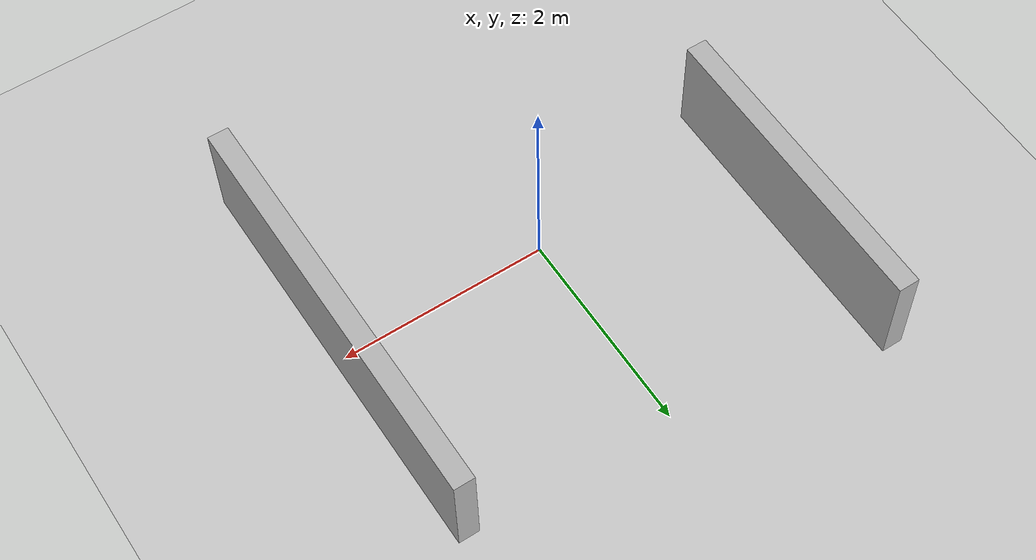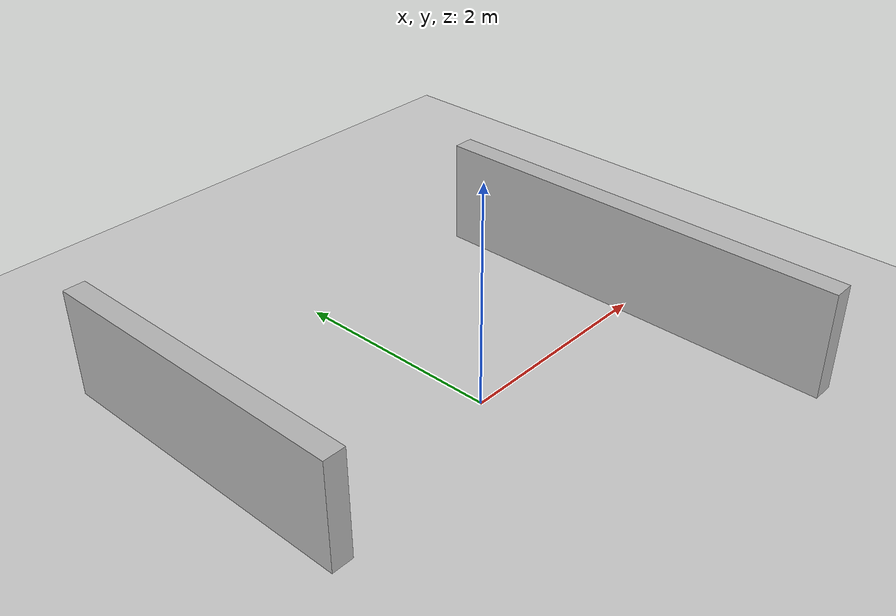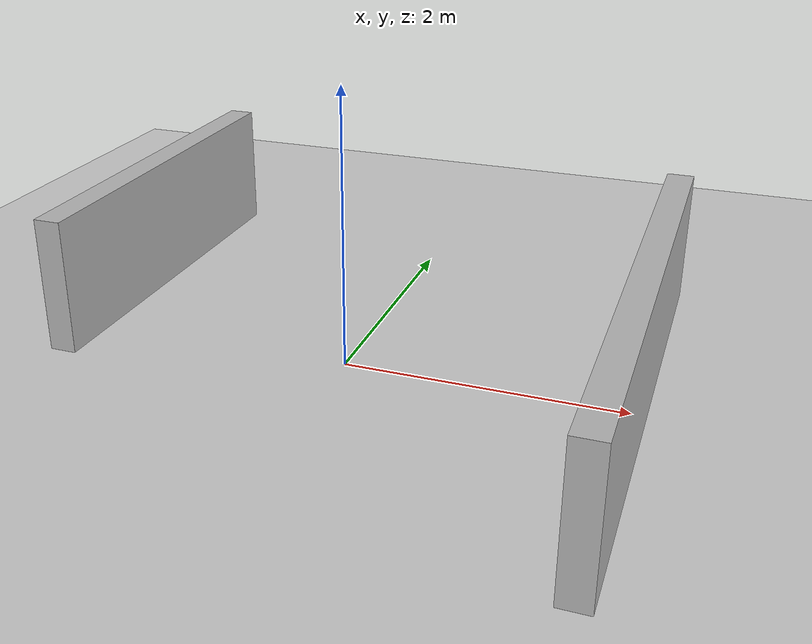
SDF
<?xml version="1.0" ?>
<sdf version="1.6">
  <world name="grid_world">
    <include>
      <uri>model://sun</uri>
    </include>

    <include>
      <uri>model://ground_plane</uri>
    </include>

    <model name="wall_1">
      <static>true</static>
      <pose>2 0 0.5 0 0 0</pose>
      <link name="link">
        <collision name="collision">
          <geometry>
            <box>
              <size>0.2 4 1</size>
            </box>
          </geometry>
        </collision>
        <visual name="visual">
          <geometry>
            <box>
              <size>0.2 4 1</size>
            </box>
          </geometry>
        </visual>
      </link>
    </model>

    <model name="wall_2">
      <static>true</static>
      <pose>-2 1 0.5 0 0 0</pose>
      <link name="link">
        <collision name="collision">
          <geometry>
            <box>
              <size>0.2 3 1</size>
            </box>
          </geometry>
        </collision>
        <visual name="visual">
          <geometry>
            <box>
              <size>0.2 3 1</size>
            </box>
          </geometry>
        </visual>
      </link>
    </model>
  </world>
</sdf>
